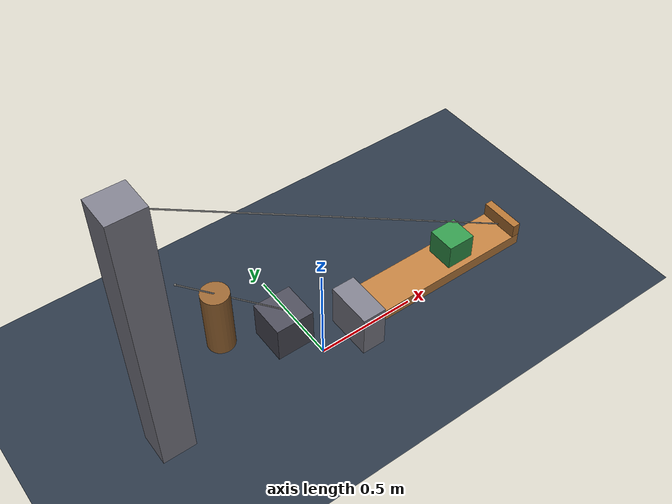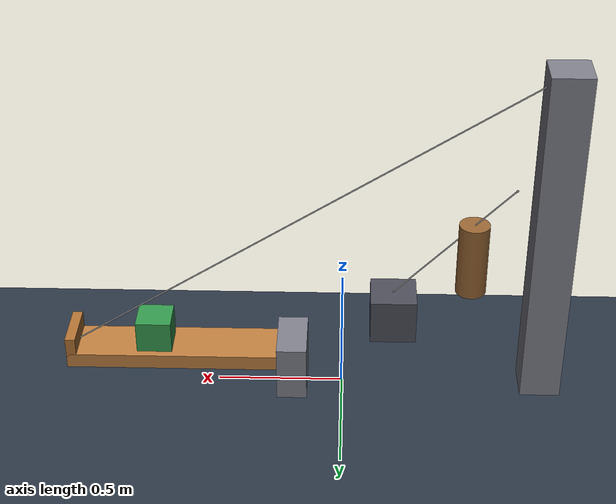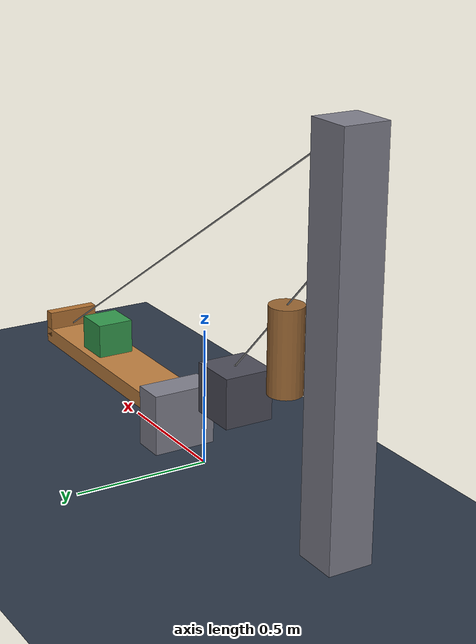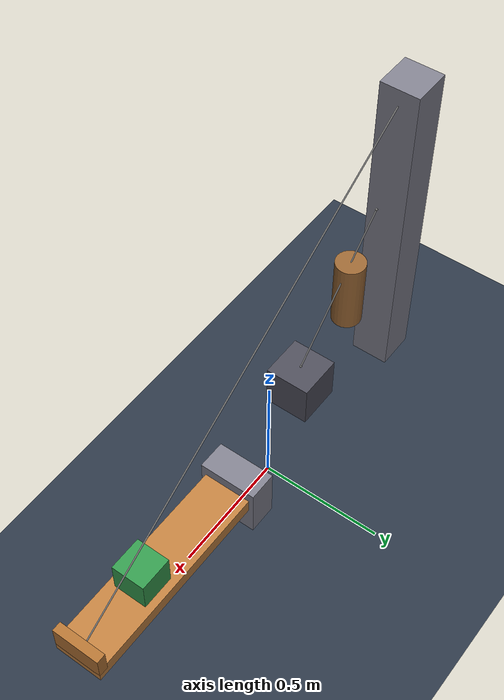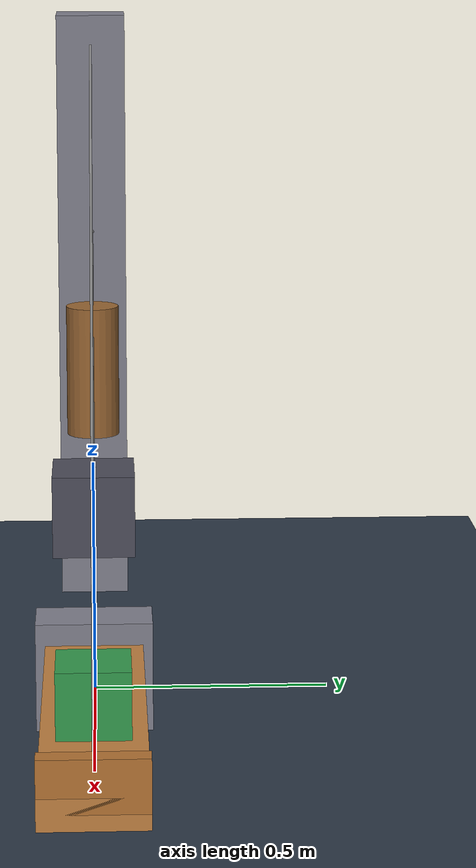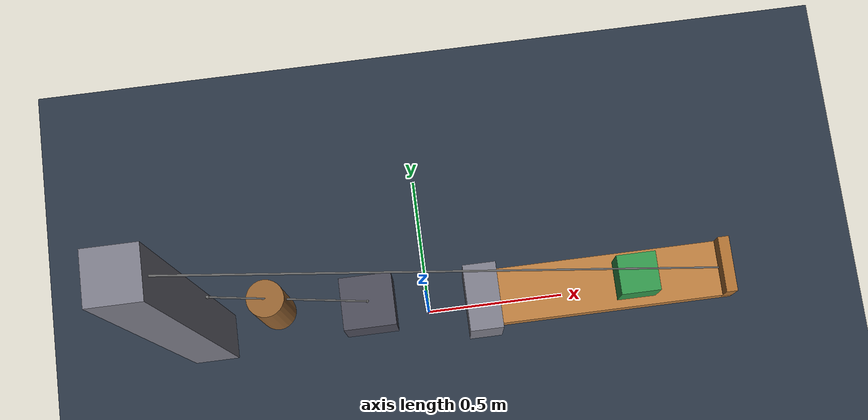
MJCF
<mujoco model="cable_drawbridge">
  <compiler angle="radian"/>
  <option timestep="0.002" integrator="Euler" iterations="1000" tolerance="1e-6" gravity="0 0 -9.81">
    <flag contact="enable" equality="enable" limit="enable" frictionloss="disable"/>
  </option>
  <asset>
    <texture name="floor_grid" type="2d" builtin="checker" rgb1="0.12 0.15 0.20" rgb2="0.22 0.28 0.35" width="512" height="512"/>
    <material name="floor_material" texture="floor_grid" texrepeat="8 8" reflectance="0.1"/>
  </asset>
  <worldbody>
    <light directional="true" pos="0 -2 5" dir="0 0.3 -1" diffuse="0.9 0.9 0.9" specular="0.3 0.3 0.3"/>

    <geom material="floor_material" name="floor" type="plane" size="5 5 0.1" pos="0 0 0" condim="1" priority="1" contype="1" conaffinity="0"/>
    <body name="tower" pos="-0.8 0 0">
      <geom name="tower_geom" type="box" size="0.08 0.08 0.7" pos="0 0 0.7" rgba="0.5 0.5 0.55 1" mass="0" contype="1" conaffinity="0" condim="3"/>
      <site name="pulley_top" pos="0 0 1.32"/>
      <site name="mid" pos="0.15 0 0.9"/>
      <site name="anchor" pos="0 0 1.38"/>
    </body>
    <body name="bollard" pos="-0.5 0 0">
      <geom name="bollard_geom" type="cylinder" size="0.06 0.15" pos="0 0 0.6" rgba="0.6 0.4 0.2 1" mass="0" contype="1" conaffinity="0" condim="3"/>
    </body>
    <body name="counterweight" pos="-0.2 0 0.35">
      <joint name="winch" type="slide" axis="0 0 1" limited="true" range="0.02 0.65" damping="0.5"/>
      <geom name="weight_geom" type="box" size="0.09 0.09 0.09" rgba="0.3 0.3 0.35 1" mass="2.0" contype="1" conaffinity="0" condim="3"/>
      <site name="winch_site" pos="0 0 0.09"/>
    </body>
    <body name="deckbase" pos="0.2 0 0.15">
      <geom name="base_geom" type="box" size="0.06 0.12 0.15" pos="0 0 -0.075" rgba="0.5 0.5 0.55 1" mass="0" contype="1" conaffinity="0" condim="3"/>
      <body name="deck" pos="0 0 0">
        <joint name="hinge" type="hinge" axis="0 1 0" limited="true" range="-1.0 0.13" damping="0.5"/>
        <geom name="deck_geom" type="box" size="0.45 0.1 0.03" pos="0.45 0 0" rgba="0.75 0.5 0.25 1" mass="0.4" friction="1.0 0.05 0.02" contype="1" conaffinity="0" condim="3"/>
        <geom name="lip_geom" type="box" size="0.02 0.1 0.05" pos="0.88 0 0.05" rgba="0.7 0.45 0.2 1" mass="0.05" contype="1" conaffinity="0" condim="3"/>
        <site name="deck_tip" pos="0.88 0 0.03"/>
      </body>
    </body>
    <body name="crate" pos="0.75 0 0.24">
      <freejoint name="crate_free"/>
      <geom name="crate_geom" type="box" size="0.07 0.07 0.07" rgba="0.2 0.6 0.3 1" mass="0.3" friction="1.0 0.05 0.02" contype="1" conaffinity="0" condim="3"/>
    </body>
  </worldbody>
  <contact>
    <pair geom1="crate_geom" geom2="deck_geom"/>
    <pair geom1="crate_geom" geom2="lip_geom"/>
    <pair geom1="crate_geom" geom2="floor" condim="1"/>
  </contact>
  <tendon>
    <spatial name="cable" stiffness="300" damping="12" springlength="1.25 1.25">
      <site site="winch_site"/>
      <geom geom="bollard_geom" sidesite="mid"/>
      <site site="mid"/>
      <pulley divisor="3"/>
      <site site="deck_tip"/>
      <site site="anchor"/>
    </spatial>
  </tendon>
  <actuator>
    <general joint="winch" dyntype="filter" dynprm="0.03 0 0" gainprm="60 0 8" biastype="none"/>
  </actuator>
  <keyframe>
    <key name="start" qpos="0.55 0.13 0.75 0 0.28 1 0 0 0" act="0"/>
  </keyframe>
</mujoco>
